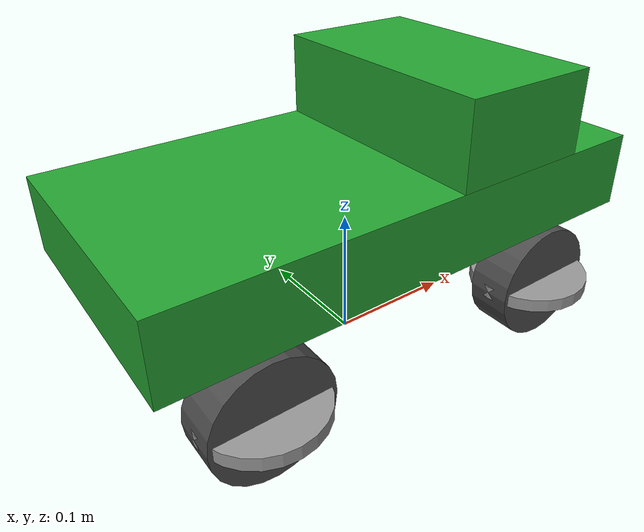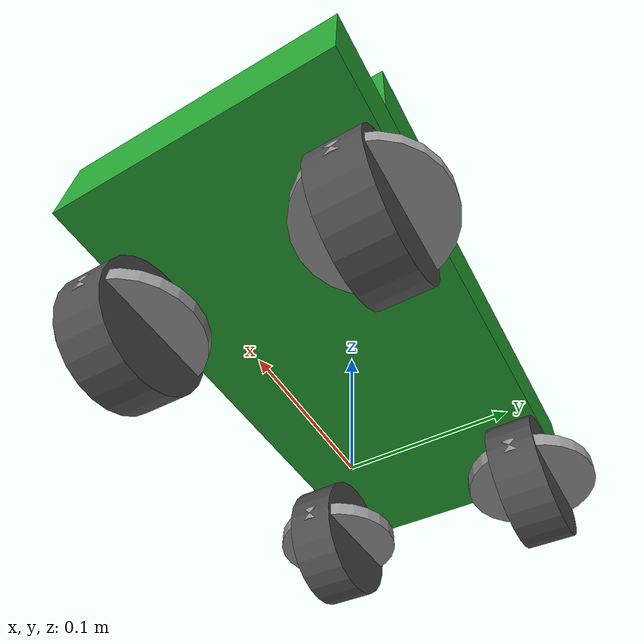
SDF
<sdf version='1.7'>
  <model name='rccar-unimog'>
    <link name='base_link'>
      <inertial>
        <pose>-0.112014 7.2e-05 0.041784 0 -0 0</pose>
        <mass>17.572</mass>
        <inertia>
          <ixx>0.139315</ixx>
          <ixy>-0.000275643</ixy>
          <ixz>0.00515893</ixz>
          <iyy>0.0697345</iyy>
          <iyz>-0.000196203</iyz>
          <izz>0.175889</izz>
        </inertia>
      </inertial>
      <collision name='base_link_collision'>
        <pose>-0.1925 -0.0975 0.0945 0 -0 0</pose>
        <geometry>
          <box>
            <size>0.385 0.195 0.12</size>
          </box>
        </geometry>
        <surface>
          <contact>
            <ode/>
          </contact>
          <friction>
            <ode/>
          </friction>
        </surface>
      </collision>
      <collision name='base_link_fixed_joint_lump__camera_link_collision_1'>
        <pose>0.10675 0 0.1975 0 -0 0</pose>
        <geometry>
          <box>
            <size>0.02505 0.09 0.025</size>
          </box>
        </geometry>
        <surface>
          <contact>
            <ode/>
          </contact>
          <friction>
            <ode/>
          </friction>
        </surface>
      </collision>
      <collision name='base_link_fixed_joint_lump__rear_left_mount_collision_2'>
        <pose>-0.1235 0.08075 0.045 0 -0 0</pose>
        <geometry>
          <cylinder>
            <length>0.01</length>
            <radius>0.045</radius>
          </cylinder>
        </geometry>
        <surface>
          <contact>
            <ode/>
          </contact>
          <friction>
            <ode/>
          </friction>
        </surface>
      </collision>
      <collision name='base_link_fixed_joint_lump__rear_right_mount_collision_3'>
        <pose>-0.1235 -0.08075 0.045 0 -0 0</pose>
        <geometry>
          <cylinder>
            <length>0.01</length>
            <radius>0.045</radius>
          </cylinder>
        </geometry>
        <surface>
          <contact>
            <ode/>
          </contact>
          <friction>
            <ode/>
          </friction>
        </surface>
      </collision>
      <visual name='base_link_visual'>
        <pose>0 0 0.123 0 -0 0</pose>
        <geometry>
          <box>
            <size>0.385 0.195 0.057</size>
          </box>
        </geometry>
        <material>
          <script>
            <name>Gazebo/Green</name>
            <uri>file://media/materials/scripts/gazebo.material</uri>
          </script>
        </material>
      </visual>
      <visual name='base_link_visual_1'>
        <pose>0.0775 0 0.183 0 -0 0</pose>
        <geometry>
          <box>
            <size>0.11 0.195 0.063</size>
          </box>
        </geometry>
        <material>
          <script>
            <name>Gazebo/Green</name>
            <uri>file://media/materials/scripts/gazebo.material</uri>
          </script>
        </material>
      </visual>
      <visual name='base_link_fixed_joint_lump__gps_link_visual_2'>
        <pose>-0.1375 0 0.125 0 -0 0</pose>
        <geometry>
          <box>
            <size>0.055 0.06 0.0225</size>
          </box>
        </geometry>
        <material>
          <script>
            <name>Gazebo/Black</name>
            <uri>file://media/materials/scripts/gazebo.material</uri>
          </script>
        </material>
      </visual>
      <visual name='base_link_fixed_joint_lump__camera_link_visual_3'>
        <pose>0.10675 0 0.1975 0 -0 0</pose>
        <geometry>
          <box>
            <size>0.02505 0.09 0.025</size>
          </box>
        </geometry>
      </visual>
      <visual name='base_link_fixed_joint_lump__rear_left_mount_visual_4'>
        <pose>-0.1235 0.08075 0.045 0 -0 0</pose>
        <geometry>
          <cylinder>
            <length>0.01</length>
            <radius>0.045</radius>
          </cylinder>
        </geometry>
        <material>
          <script>
            <name>Gazebo/Grey</name>
            <uri>file://media/materials/scripts/gazebo.material</uri>
          </script>
        </material>
      </visual>
      <visual name='base_link_fixed_joint_lump__rear_right_mount_visual_5'>
        <pose>-0.1235 -0.08075 0.045 0 -0 0</pose>
        <geometry>
          <cylinder>
            <length>0.01</length>
            <radius>0.045</radius>
          </cylinder>
        </geometry>
        <material>
          <script>
            <name>Gazebo/Grey</name>
            <uri>file://media/materials/scripts/gazebo.material</uri>
          </script>
        </material>
      </visual>
      <sensor name='ublox_gps' type='gps'>
        <always_on>1</always_on>
        <update_rate>5</update_rate>
        <plugin name='gazebo_ros_gps_sensor' filename='libgazebo_ros_gps_sensor.so'>
          <frame_name>gps_link</frame_name>
          <ros>
            <remapping>~/out:=/gnss/fix</remapping>
          </ros>
        </plugin>
        <pose>-0.1375 0 0.125 0 -0 0</pose>
      </sensor>
      <sensor name='cameradepth' type='depth'>
        <camera name='camera'>
          <horizontal_fov>1.57</horizontal_fov>
          <image>
            <width>640</width>
            <height>480</height>
          </image>
          <clip>
            <near>0.1</near>
            <far>100</far>
          </clip>
          <noise>
            <type>gaussian</type>
            <mean>0</mean>
            <stddev>0.1</stddev>
          </noise>
        </camera>
        <always_on>1</always_on>
        <update_rate>30</update_rate>
        <visualize>0</visualize>
        <pose>0.10675 0.0175 0.1975 0 -0 0</pose>
      </sensor>
      <sensor name='cameracolor' type='camera'>
        <camera name='camera'>
          <horizontal_fov>1.57</horizontal_fov>
          <image>
            <width>640</width>
            <height>480</height>
            <format>RGB_INT8</format>
          </image>
          <clip>
            <near>0.1</near>
            <far>100</far>
          </clip>
          <noise>
            <type>gaussian</type>
            <mean>0</mean>
            <stddev>0.007</stddev>
          </noise>
        </camera>
        <always_on>1</always_on>
        <update_rate>30</update_rate>
        <visualize>1</visualize>
        <pose>0.10675 0.0175 0.1975 0 -0 0</pose>
      </sensor>
      <sensor name='cameraired1' type='camera'>
        <camera name='camera'>
          <horizontal_fov>1.57</horizontal_fov>
          <image>
            <width>640</width>
            <height>480</height>
            <format>L_INT8</format>
          </image>
          <clip>
            <near>0.1</near>
            <far>100</far>
          </clip>
          <noise>
            <type>gaussian</type>
            <mean>0</mean>
            <stddev>0.05</stddev>
          </noise>
        </camera>
        <always_on>1</always_on>
        <update_rate>1</update_rate>
        <visualize>0</visualize>
        <pose>0.10675 0.0175 0.1975 0 -0 0</pose>
      </sensor>
      <sensor name='cameraired2' type='camera'>
        <camera name='camera'>
          <horizontal_fov>1.57</horizontal_fov>
          <image>
            <width>640</width>
            <height>480</height>
            <format>L_INT8</format>
          </image>
          <clip>
            <near>0.1</near>
            <far>100</far>
          </clip>
          <noise>
            <type>gaussian</type>
            <mean>0</mean>
            <stddev>0.05</stddev>
          </noise>
        </camera>
        <always_on>1</always_on>
        <update_rate>1</update_rate>
        <visualize>0</visualize>
        <pose>0.10675 0.0175 0.1975 0 -0 0</pose>
      </sensor>
      <gravity>1</gravity>
      <sensor name='camera_imu' type='imu'>
        <always_on>1</always_on>
        <update_rate>200</update_rate>
        <plugin name='imu_plugin' filename='libgazebo_ros_imu_sensor.so'>
          <frame_name>camera_imu_optical_frame</frame_name>
          <ros>
            <remapping>~/out:=/camera/imu_raw</remapping>
          </ros>
        </plugin>
        <pose>0.09501 0.01198 0.2026 -1.5708 -0 -1.5708</pose>
      </sensor>
    </link>
    <joint name='front_left_mount_joint' type='revolute'>
      <pose relative_to='base_link'>0.1215 0.08075 0.045 0 -0 0</pose>
      <parent>base_link</parent>
      <child>front_left_mount</child>
      <axis>
        <xyz>0 0 1</xyz>
        <limit>
          <lower>-0.6458</lower>
          <upper>0.6458</upper>
          <effort>4.2</effort>
          <velocity>6.28</velocity>
        </limit>
        <dynamics>
          <spring_reference>0</spring_reference>
          <spring_stiffness>0</spring_stiffness>
        </dynamics>
      </axis>
    </joint>
    <link name='front_left_mount'>
      <pose relative_to='front_left_mount_joint'>0 0 0 0 -0 0</pose>
      <inertial>
        <pose>0 0 0 0 -0 0</pose>
        <mass>8</mass>
        <inertia>
          <ixx>0.01</ixx>
          <ixy>0</ixy>
          <ixz>0</ixz>
          <iyy>0.01</iyy>
          <iyz>0</iyz>
          <izz>0.01</izz>
        </inertia>
      </inertial>
      <collision name='front_left_mount_collision'>
        <pose>0 0 0 0 -0 0</pose>
        <geometry>
          <cylinder>
            <length>0.01</length>
            <radius>0.045</radius>
          </cylinder>
        </geometry>
        <surface>
          <contact>
            <ode/>
          </contact>
          <friction>
            <ode/>
          </friction>
        </surface>
      </collision>
      <visual name='front_left_mount_visual'>
        <pose>0 0 0 0 -0 0</pose>
        <geometry>
          <cylinder>
            <length>0.01</length>
            <radius>0.045</radius>
          </cylinder>
        </geometry>
        <material>
          <script>
            <name>Gazebo/Grey</name>
            <uri>file://media/materials/scripts/gazebo.material</uri>
          </script>
        </material>
      </visual>
    </link>
    <joint name='front_left_wheel_joint' type='revolute'>
      <pose relative_to='front_left_mount'>0 0 0 0 -0 0</pose>
      <parent>front_left_mount</parent>
      <child>front_left_wheel</child>
      <axis>
        <xyz>0 1 0</xyz>
        <limit>
          <lower>-1e+16</lower>
          <upper>1e+16</upper>
        </limit>
        <dynamics>
          <spring_reference>0</spring_reference>
          <spring_stiffness>0</spring_stiffness>
        </dynamics>
      </axis>
    </joint>
    <link name='front_left_wheel'>
      <pose relative_to='front_left_wheel_joint'>0 0 0 0 -0 0</pose>
      <inertial>
        <pose>0 0 0 0 -0 0</pose>
        <mass>0.5</mass>
        <inertia>
          <ixx>0.01</ixx>
          <ixy>0</ixy>
          <ixz>0</ixz>
          <iyy>0.01</iyy>
          <iyz>0</iyz>
          <izz>0.01</izz>
        </inertia>
      </inertial>
      <collision name='front_left_wheel_collision'>
        <pose>0 0 0 1.5708 -0 0</pose>
        <geometry>
          <cylinder>
            <length>0.0335</length>
            <radius>0.045</radius>
          </cylinder>
        </geometry>
        <surface>
          <contact>
            <ode/>
          </contact>
          <friction>
            <ode/>
          </friction>
        </surface>
      </collision>
      <visual name='front_left_wheel_visual'>
        <pose>0 0 0 1.5708 -0 0</pose>
        <geometry>
          <cylinder>
            <length>0.0335</length>
            <radius>0.045</radius>
          </cylinder>
        </geometry>
        <material>
          <script>
            <name>Gazebo/DarkGrey</name>
            <uri>file://media/materials/scripts/gazebo.material</uri>
          </script>
        </material>
      </visual>
    </link>
    <joint name='front_right_mount_joint' type='revolute'>
      <pose relative_to='base_link'>0.1215 -0.08075 0.045 0 -0 0</pose>
      <parent>base_link</parent>
      <child>front_right_mount</child>
      <axis>
        <xyz>0 0 1</xyz>
        <limit>
          <lower>-0.6458</lower>
          <upper>0.6458</upper>
          <effort>4.2</effort>
          <velocity>6.28</velocity>
        </limit>
        <dynamics>
          <spring_reference>0</spring_reference>
          <spring_stiffness>0</spring_stiffness>
        </dynamics>
      </axis>
    </joint>
    <link name='front_right_mount'>
      <pose relative_to='front_right_mount_joint'>0 0 0 0 -0 0</pose>
      <inertial>
        <pose>0 0 0 0 -0 0</pose>
        <mass>8</mass>
        <inertia>
          <ixx>0.01</ixx>
          <ixy>0</ixy>
          <ixz>0</ixz>
          <iyy>0.01</iyy>
          <iyz>0</iyz>
          <izz>0.01</izz>
        </inertia>
      </inertial>
      <collision name='front_right_mount_collision'>
        <pose>0 0 0 0 -0 0</pose>
        <geometry>
          <cylinder>
            <length>0.01</length>
            <radius>0.045</radius>
          </cylinder>
        </geometry>
        <surface>
          <contact>
            <ode/>
          </contact>
          <friction>
            <ode/>
          </friction>
        </surface>
      </collision>
      <visual name='front_right_mount_visual'>
        <pose>0 0 0 0 -0 0</pose>
        <geometry>
          <cylinder>
            <length>0.01</length>
            <radius>0.045</radius>
          </cylinder>
        </geometry>
        <material>
          <script>
            <name>Gazebo/Grey</name>
            <uri>file://media/materials/scripts/gazebo.material</uri>
          </script>
        </material>
      </visual>
    </link>
    <joint name='front_right_wheel_joint' type='revolute'>
      <pose relative_to='front_right_mount'>0 0 0 0 -0 0</pose>
      <parent>front_right_mount</parent>
      <child>front_right_wheel</child>
      <axis>
        <xyz>0 1 0</xyz>
        <limit>
          <lower>-1e+16</lower>
          <upper>1e+16</upper>
        </limit>
        <dynamics>
          <spring_reference>0</spring_reference>
          <spring_stiffness>0</spring_stiffness>
        </dynamics>
      </axis>
    </joint>
    <link name='front_right_wheel'>
      <pose relative_to='front_right_wheel_joint'>0 0 0 0 -0 0</pose>
      <inertial>
        <pose>0 0 0 0 -0 0</pose>
        <mass>0.5</mass>
        <inertia>
          <ixx>0.01</ixx>
          <ixy>0</ixy>
          <ixz>0</ixz>
          <iyy>0.01</iyy>
          <iyz>0</iyz>
          <izz>0.01</izz>
        </inertia>
      </inertial>
      <collision name='front_right_wheel_collision'>
        <pose>0 0 0 1.5708 -0 0</pose>
        <geometry>
          <cylinder>
            <length>0.0335</length>
            <radius>0.045</radius>
          </cylinder>
        </geometry>
        <surface>
          <contact>
            <ode/>
          </contact>
          <friction>
            <ode/>
          </friction>
        </surface>
      </collision>
      <visual name='front_right_wheel_visual'>
        <pose>0 0 0 1.5708 -0 0</pose>
        <geometry>
          <cylinder>
            <length>0.0335</length>
            <radius>0.045</radius>
          </cylinder>
        </geometry>
        <material>
          <script>
            <name>Gazebo/DarkGrey</name>
            <uri>file://media/materials/scripts/gazebo.material</uri>
          </script>
        </material>
      </visual>
    </link>
    <joint name='rear_left_wheel_joint' type='revolute'>
      <pose relative_to='base_link'>-0.1235 0.08075 0.045 0 -0 0</pose>
      <parent>base_link</parent>
      <child>rear_left_wheel</child>
      <axis>
        <xyz>0 1 0</xyz>
        <limit>
          <lower>-1e+16</lower>
          <upper>1e+16</upper>
        </limit>
        <dynamics>
          <spring_reference>0</spring_reference>
          <spring_stiffness>0</spring_stiffness>
        </dynamics>
      </axis>
    </joint>
    <link name='rear_left_wheel'>
      <pose relative_to='rear_left_wheel_joint'>0 0 0 0 -0 0</pose>
      <inertial>
        <pose>0 0 0 0 -0 0</pose>
        <mass>0.5</mass>
        <inertia>
          <ixx>0.01</ixx>
          <ixy>0</ixy>
          <ixz>0</ixz>
          <iyy>0.01</iyy>
          <iyz>0</iyz>
          <izz>0.01</izz>
        </inertia>
      </inertial>
      <collision name='rear_left_wheel_collision'>
        <pose>0 0 0 1.5708 -0 0</pose>
        <geometry>
          <cylinder>
            <length>0.0335</length>
            <radius>0.045</radius>
          </cylinder>
        </geometry>
        <surface>
          <contact>
            <ode/>
          </contact>
          <friction>
            <ode/>
          </friction>
        </surface>
      </collision>
      <visual name='rear_left_wheel_visual'>
        <pose>0 0 0 1.5708 -0 0</pose>
        <geometry>
          <cylinder>
            <length>0.0335</length>
            <radius>0.045</radius>
          </cylinder>
        </geometry>
        <material>
          <script>
            <name>Gazebo/DarkGrey</name>
            <uri>file://media/materials/scripts/gazebo.material</uri>
          </script>
        </material>
      </visual>
    </link>
    <joint name='rear_right_wheel_joint' type='revolute'>
      <pose relative_to='base_link'>-0.1235 -0.08075 0.045 0 -0 0</pose>
      <parent>base_link</parent>
      <child>rear_right_wheel</child>
      <axis>
        <xyz>0 1 0</xyz>
        <limit>
          <lower>-1e+16</lower>
          <upper>1e+16</upper>
        </limit>
        <dynamics>
          <spring_reference>0</spring_reference>
          <spring_stiffness>0</spring_stiffness>
        </dynamics>
      </axis>
    </joint>
    <link name='rear_right_wheel'>
      <pose relative_to='rear_right_wheel_joint'>0 0 0 0 -0 0</pose>
      <inertial>
        <pose>0 0 0 0 -0 0</pose>
        <mass>0.5</mass>
        <inertia>
          <ixx>0.01</ixx>
          <ixy>0</ixy>
          <ixz>0</ixz>
          <iyy>0.01</iyy>
          <iyz>0</iyz>
          <izz>0.01</izz>
        </inertia>
      </inertial>
      <collision name='rear_right_wheel_collision'>
        <pose>0 0 0 1.5708 -0 0</pose>
        <geometry>
          <cylinder>
            <length>0.0335</length>
            <radius>0.045</radius>
          </cylinder>
        </geometry>
        <surface>
          <contact>
            <ode/>
          </contact>
          <friction>
            <ode/>
          </friction>
        </surface>
      </collision>
      <visual name='rear_right_wheel_visual'>
        <pose>0 0 0 1.5708 -0 0</pose>
        <geometry>
          <cylinder>
            <length>0.0335</length>
            <radius>0.045</radius>
          </cylinder>
        </geometry>
        <material>
          <script>
            <name>Gazebo/DarkGrey</name>
            <uri>file://media/materials/scripts/gazebo.material</uri>
          </script>
        </material>
      </visual>
    </link>
    <plugin name='gazebo_realsense' filename='librealsense_gazebo_plugin.so'>
      <prefix>camera</prefix>
      <depthUpdateRate>30.0</depthUpdateRate>
      <colorUpdateRate>30.0</colorUpdateRate>
      <infraredUpdateRate>1.0</infraredUpdateRate>
      <depthTopicName>camera/depth/image_rect_raw</depthTopicName>
      <depthCameraInfoTopicName>camera/depth/camera_info</depthCameraInfoTopicName>
      <colorTopicName>camera/color/image_raw</colorTopicName>
      <colorCameraInfoTopicName>camera/color/camera_info</colorCameraInfoTopicName>
      <infrared1TopicName>camera/infra1/image_raw</infrared1TopicName>
      <infrared1CameraInfoTopicName>camera/infra1/camera_info</infrared1CameraInfoTopicName>
      <infrared2TopicName>camera/infra2/image_raw</infrared2TopicName>
      <infrared2CameraInfoTopicName>camera/infra2/camera_info</infrared2CameraInfoTopicName>
      <colorOpticalframeName>camera_color_optical_frame</colorOpticalframeName>
      <depthOpticalframeName>camera_depth_optical_frame</depthOpticalframeName>
      <infrared1OpticalframeName>camera_left_ir_optical_frame</infrared1OpticalframeName>
      <infrared2OpticalframeName>camera_right_ir_optical_frame</infrared2OpticalframeName>
      <rangeMinDepth>0.3</rangeMinDepth>
      <rangeMaxDepth>3.0</rangeMaxDepth>
      <pointCloud>1</pointCloud>
      <pointCloudTopicName>camera/depth/color/points</pointCloudTopicName>
      <pointCloudCutoff>0.3</pointCloudCutoff>
    </plugin>
    <static>0</static>
    <plugin name='gazebo_ros_ackermann_drive' filename='libgazebo_ros_ackermann_drive.so'>
      <ros>
        <remapping>cmd_vel:=cmd_vel</remapping>
        <remapping>odom:=odometry/simulation</remapping>
        <remapping>distance:=distance</remapping>
      </ros>
      <update_rate>100.0</update_rate>
      <front_left_joint>front_left_wheel_joint</front_left_joint>
      <front_right_joint>front_right_wheel_joint</front_right_joint>
      <rear_left_joint>rear_left_wheel_joint</rear_left_joint>
      <rear_right_joint>rear_right_wheel_joint</rear_right_joint>
      <left_steering_joint>front_left_mount_joint</left_steering_joint>
      <right_steering_joint>front_right_mount_joint</right_steering_joint>
      <max_steer>0.6458</max_steer>
      <max_steering_angle>7.85</max_steering_angle>
      <max_speed>2.0</max_speed>
      <left_steering_pid_gain>6 0 0</left_steering_pid_gain>
      <left_steering_i_range>0 0</left_steering_i_range>
      <right_steering_pid_gain>6 0 0</right_steering_pid_gain>
      <right_steering_i_range>0 0</right_steering_i_range>
      <linear_velocity_pid_gain>10 0 0</linear_velocity_pid_gain>
      <linear_velocity_i_range>0 0</linear_velocity_i_range>
      <publish_odom>1</publish_odom>
      <publish_odom_tf>0</publish_odom_tf>
      <publish_wheel_tf>1</publish_wheel_tf>
      <publish_distance>1</publish_distance>
      <odometry_frame>odom</odometry_frame>
      <robot_base_frame>base_link</robot_base_frame>
    </plugin>
  </model>
</sdf>
